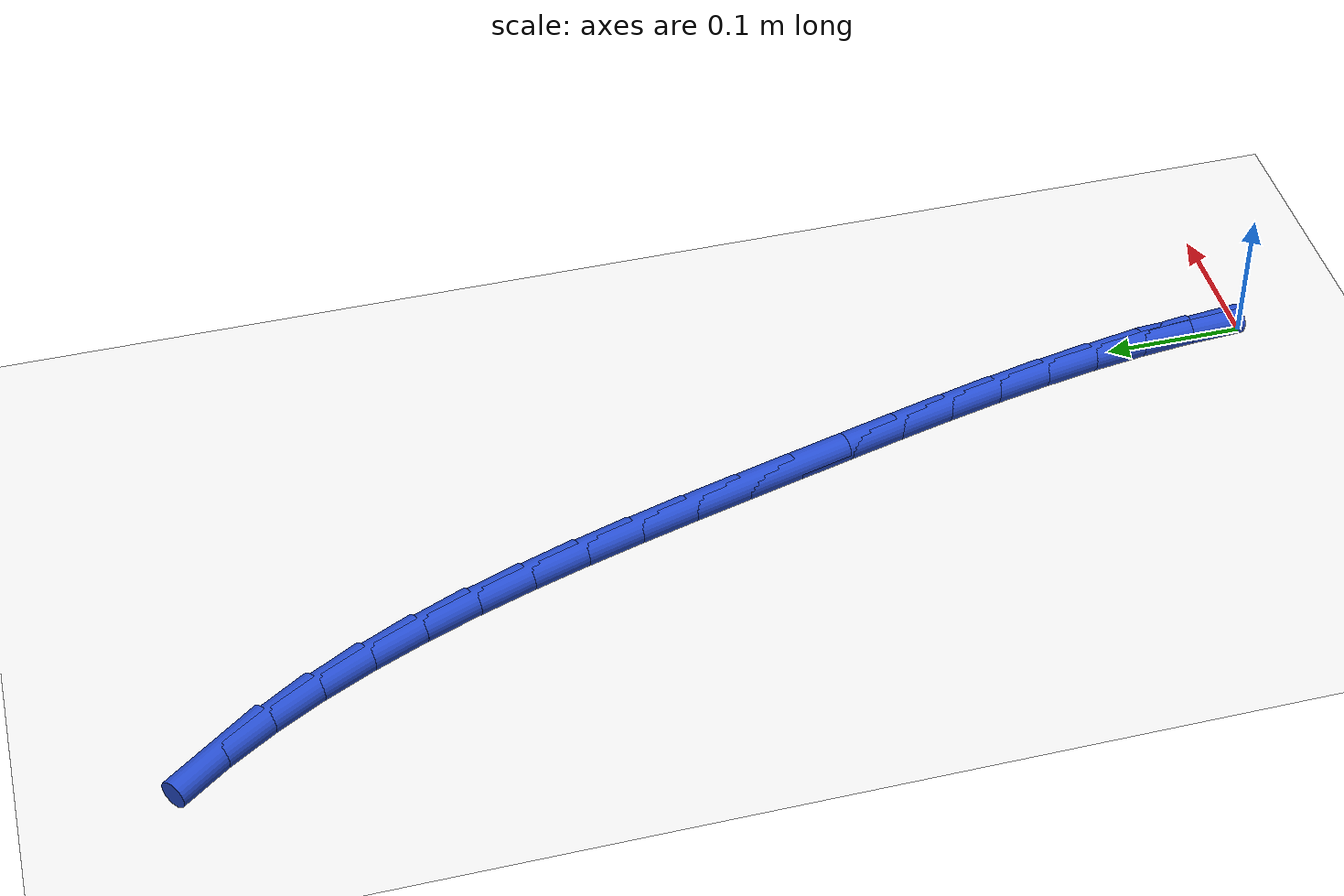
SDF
<sdf version="1.6">
 <world name="default">
  <model name="ground_plane">
   <static>1</static>
   <link name="link">
    <collision name="collision">
     <geometry><plane><normal>0 0 1</normal><size>100 100</size></plane></geometry>
     <surface><friction><ode><mu>100</mu><mu2>50</mu2></ode></friction></surface>
    </collision>
    <visual name="visual">
     <cast_shadows>0</cast_shadows>
     <geometry><plane><normal>0 0 1</normal><size>100 100</size></plane></geometry>
     <material>
      <script><uri>file://media/materials/scripts/gazebo.material</uri><name>Gazebo/WhiteGlow</name></script>
     </material>
    </visual>
   </link>
  </model>
  <model name="line">
   <link name="link_1">
    <pose>-0.0022696599464734476 0.03988689702617324 0.01 0 1.57 -1.4692420824111356</pose>
    <collision name="collision">
     <geometry><cylinder><radius>0.01</radius><length>0.08</length></cylinder></geometry>
    </collision>
    <visual name="visual">
     <material>
      <script><name>Gazebo/Blue</name><uri>file://media/materials/scripts/gazebo.material</uri></script>
     </material>
     <geometry><cylinder><radius>0.01</radius><length>0.08</length></cylinder></geometry>
    </visual>
   </link>
   <link name="link_2">
    <pose>-0.006303267038536477 0.07946900431053709 0.01 0 1.57 -1.4298986067800323</pose>
    <collision name="collision">
     <geometry><cylinder><radius>0.01</radius><length>0.08</length></cylinder></geometry>
    </collision>
    <visual name="visual">
     <material>
      <script><name>Gazebo/Blue</name><uri>file://media/materials/scripts/gazebo.material</uri></script>
     </material>
     <geometry><cylinder><radius>0.01</radius><length>0.08</length></cylinder></geometry>
    </visual>
   </link>
   <link name="link_3">
    <pose>-0.011885944081937164 0.1188286569059554 0.01 0 1.57 -1.3962285846299256</pose>
    <collision name="collision">
     <geometry><cylinder><radius>0.01</radius><length>0.08</length></cylinder></geometry>
    </collision>
    <visual name="visual">
     <material>
      <script><name>Gazebo/Blue</name><uri>file://media/materials/scripts/gazebo.material</uri></script>
     </material>
     <geometry><cylinder><radius>0.01</radius><length>0.08</length></cylinder></geometry>
    </visual>
   </link>
   <link name="link_4">
    <pose>-0.018802813882423556 0.15804818986529195 0.01 0 1.57 -1.3684010352273537</pose>
    <collision name="collision">
     <geometry><cylinder><radius>0.01</radius><length>0.08</length></cylinder></geometry>
    </collision>
    <visual name="visual">
     <material>
      <script><name>Gazebo/Blue</name><uri>file://media/materials/scripts/gazebo.material</uri></script>
     </material>
     <geometry><cylinder><radius>0.01</radius><length>0.08</length></cylinder></geometry>
    </visual>
   </link>
   <link name="link_5">
    <pose>-0.026838999245743733 0.19720993824141048 0.01 0 1.57 -1.3464791585278855</pose>
    <collision name="collision">
     <geometry><cylinder><radius>0.01</radius><length>0.08</length></cylinder></geometry>
    </collision>
    <visual name="visual">
     <material>
      <script><name>Gazebo/Blue</name><uri>file://media/materials/scripts/gazebo.material</uri></script>
     </material>
     <geometry><cylinder><radius>0.01</radius><length>0.08</length></cylinder></geometry>
    </visual>
   </link>
   <link name="link_6">
    <pose>-0.03577962297764574 0.23639623708717492 0.01 0 1.57 -1.3304485131201151</pose>
    <collision name="collision">
     <geometry><cylinder><radius>0.01</radius><length>0.08</length></cylinder></geometry>
    </collision>
    <visual name="visual">
     <material>
      <script><name>Gazebo/Blue</name><uri>file://media/materials/scripts/gazebo.material</uri></script>
     </material>
     <geometry><cylinder><radius>0.01</radius><length>0.08</length></cylinder></geometry>
    </visual>
   </link>
   <link name="link_7">
    <pose>-0.045409807883877634 0.2756894214554489 0.01 0 1.57 -1.3202410651064833</pose>
    <collision name="collision">
     <geometry><cylinder><radius>0.01</radius><length>0.08</length></cylinder></geometry>
    </collision>
    <visual name="visual">
     <material>
      <script><name>Gazebo/Blue</name><uri>file://media/materials/scripts/gazebo.material</uri></script>
     </material>
     <geometry><cylinder><radius>0.01</radius><length>0.08</length></cylinder></geometry>
    </visual>
   </link>
   <link name="link_8">
    <pose>-0.055514676770187524 0.3151718263990964 0.01 0 1.57 -1.3157534332609713</pose>
    <collision name="collision">
     <geometry><cylinder><radius>0.01</radius><length>0.08</length></cylinder></geometry>
    </collision>
    <visual name="visual">
     <material>
      <script><name>Gazebo/Blue</name><uri>file://media/materials/scripts/gazebo.material</uri></script>
     </material>
     <geometry><cylinder><radius>0.01</radius><length>0.08</length></cylinder></geometry>
    </visual>
   </link>
   <link name="link_9">
    <pose>-0.06587935244232342 0.35492578697098104 0.01 0 1.57 -1.3157178530848217</pose>
    <collision name="collision">
     <geometry><cylinder><radius>0.01</radius><length>0.08</length></cylinder></geometry>
    </collision>
    <visual name="visual">
     <material>
      <script><name>Gazebo/Blue</name><uri>file://media/materials/scripts/gazebo.material</uri></script>
     </material>
     <geometry><cylinder><radius>0.01</radius><length>0.08</length></cylinder></geometry>
    </visual>
   </link>
   <link name="link_10">
    <pose>-0.07633042953991581 0.3950053008226362 0.01 0 1.57 -1.3126921690269069</pose>
    <collision name="collision">
     <geometry><cylinder><radius>0.01</radius><length>0.08</length></cylinder></geometry>
    </collision>
    <visual name="visual">
     <material>
      <script><name>Gazebo/Blue</name><uri>file://media/materials/scripts/gazebo.material</uri></script>
     </material>
     <geometry><cylinder><radius>0.01</radius><length>0.08</length></cylinder></geometry>
    </visual>
   </link>
   <link name="link_11">
    <pose>-0.08696290580641364 0.4352809677242067 0.01 0 1.57 -1.303777895708684</pose>
    <collision name="collision">
     <geometry><cylinder><radius>0.01</radius><length>0.08</length></cylinder></geometry>
    </collision>
    <visual name="visual">
     <material>
      <script><name>Gazebo/Blue</name><uri>file://media/materials/scripts/gazebo.material</uri></script>
     </material>
     <geometry><cylinder><radius>0.01</radius><length>0.08</length></cylinder></geometry>
    </visual>
   </link>
   <link name="link_12">
    <pose>-0.09797863517364529 0.4755503733924119 0.01 0 1.57 -1.2889176322460891</pose>
    <collision name="collision">
     <geometry><cylinder><radius>0.01</radius><length>0.08</length></cylinder></geometry>
    </collision>
    <visual name="visual">
     <material>
      <script><name>Gazebo/Blue</name><uri>file://media/materials/scripts/gazebo.material</uri></script>
     </material>
     <geometry><cylinder><radius>0.01</radius><length>0.08</length></cylinder></geometry>
    </visual>
   </link>
   <link name="link_13">
    <pose>-0.10957974629239936 0.5156109158305108 0.01 0 1.57 -1.2679508675858402</pose>
    <collision name="collision">
     <geometry><cylinder><radius>0.01</radius><length>0.08</length></cylinder></geometry>
    </collision>
    <visual name="visual">
     <material>
      <script><name>Gazebo/Blue</name><uri>file://media/materials/scripts/gazebo.material</uri></script>
     </material>
     <geometry><cylinder><radius>0.01</radius><length>0.08</length></cylinder></geometry>
    </visual>
   </link>
   <link name="link_14">
    <pose>-0.12196836781346451 0.5552599930417621 0.01 0 1.57 -1.240617523162065</pose>
    <collision name="collision">
     <geometry><cylinder><radius>0.01</radius><length>0.08</length></cylinder></geometry>
    </collision>
    <visual name="visual">
     <material>
      <script><name>Gazebo/Blue</name><uri>file://media/materials/scripts/gazebo.material</uri></script>
     </material>
     <geometry><cylinder><radius>0.01</radius><length>0.08</length></cylinder></geometry>
    </visual>
   </link>
   <link name="link_15">
    <pose>-0.13534662838762937 0.5942950030294252 0.01 0 1.57 -1.2065738095816627</pose>
    <collision name="collision">
     <geometry><cylinder><radius>0.01</radius><length>0.08</length></cylinder></geometry>
    </collision>
    <visual name="visual">
     <material>
      <script><name>Gazebo/Blue</name><uri>file://media/materials/scripts/gazebo.material</uri></script>
     </material>
     <geometry><cylinder><radius>0.01</radius><length>0.08</length></cylinder></geometry>
    </visual>
   </link>
   <link name="link_16">
    <pose>-0.1499166566656826 0.6325133437967586 0.01 0 1.57 -1.1654171225708025</pose>
    <collision name="collision">
     <geometry><cylinder><radius>0.01</radius><length>0.08</length></cylinder></geometry>
    </collision>
    <visual name="visual">
     <material>
      <script><name>Gazebo/Blue</name><uri>file://media/materials/scripts/gazebo.material</uri></script>
     </material>
     <geometry><cylinder><radius>0.01</radius><length>0.08</length></cylinder></geometry>
    </visual>
   </link>
   <link name="link_17">
    <pose>-0.1658805812984129 0.669712413347022 0.01 0 1.57 -1.116725628355385</pose>
    <collision name="collision">
     <geometry><cylinder><radius>0.01</radius><length>0.08</length></cylinder></geometry>
    </collision>
    <visual name="visual">
     <material>
      <script><name>Gazebo/Blue</name><uri>file://media/materials/scripts/gazebo.material</uri></script>
     </material>
     <geometry><cylinder><radius>0.01</radius><length>0.08</length></cylinder></geometry>
    </visual>
   </link>
   <link name="link_18">
    <pose>-0.18344053093660878 0.7056896096834737 0.01 0 1.57 -1.0601190018402498</pose>
    <collision name="collision">
     <geometry><cylinder><radius>0.01</radius><length>0.08</length></cylinder></geometry>
    </collision>
    <visual name="visual">
     <material>
      <script><name>Gazebo/Blue</name><uri>file://media/materials/scripts/gazebo.material</uri></script>
     </material>
     <geometry><cylinder><radius>0.01</radius><length>0.08</length></cylinder></geometry>
    </visual>
   </link>
   <link name="link_19">
    <pose>-0.20279863423105893 0.7402423308093731 0.01 0 1.57 -0.9953457853929073</pose>
    <collision name="collision">
     <geometry><cylinder><radius>0.01</radius><length>0.08</length></cylinder></geometry>
    </collision>
    <visual name="visual">
     <material>
      <script><name>Gazebo/Blue</name><uri>file://media/materials/scripts/gazebo.material</uri></script>
     </material>
     <geometry><cylinder><radius>0.01</radius><length>0.08</length></cylinder></geometry>
    </visual>
   </link>
   <link name="link_20">
    <pose>-0.22415701983255204 0.773167974727979 0.01 0 1.57 -0.9223979871179626</pose>
    <collision name="collision">
     <geometry><cylinder><radius>0.01</radius><length>0.08</length></cylinder></geometry>
    </collision>
    <visual name="visual">
     <material>
      <script><name>Gazebo/Blue</name><uri>file://media/materials/scripts/gazebo.material</uri></script>
     </material>
     <geometry><cylinder><radius>0.01</radius><length>0.08</length></cylinder></geometry>
    </visual>
   </link>
   <link name="link_171">
    <pose>-0.0023099027138784294 0.039844625783146015 0.01 0 1.57 -1.5128883872374042</pose>
    <collision name="collision">
     <geometry><cylinder><radius>0.01</radius><length>0.08</length></cylinder></geometry>
    </collision>
    <visual name="visual">
     <material>
      <script><name>Gazebo/Blue</name><uri>file://media/materials/scripts/gazebo.material</uri></script>
     </material>
     <geometry><cylinder><radius>0.01</radius><length>0.08</length></cylinder></geometry>
    </visual>
   </link>
  </model>
 </world>
</sdf>
